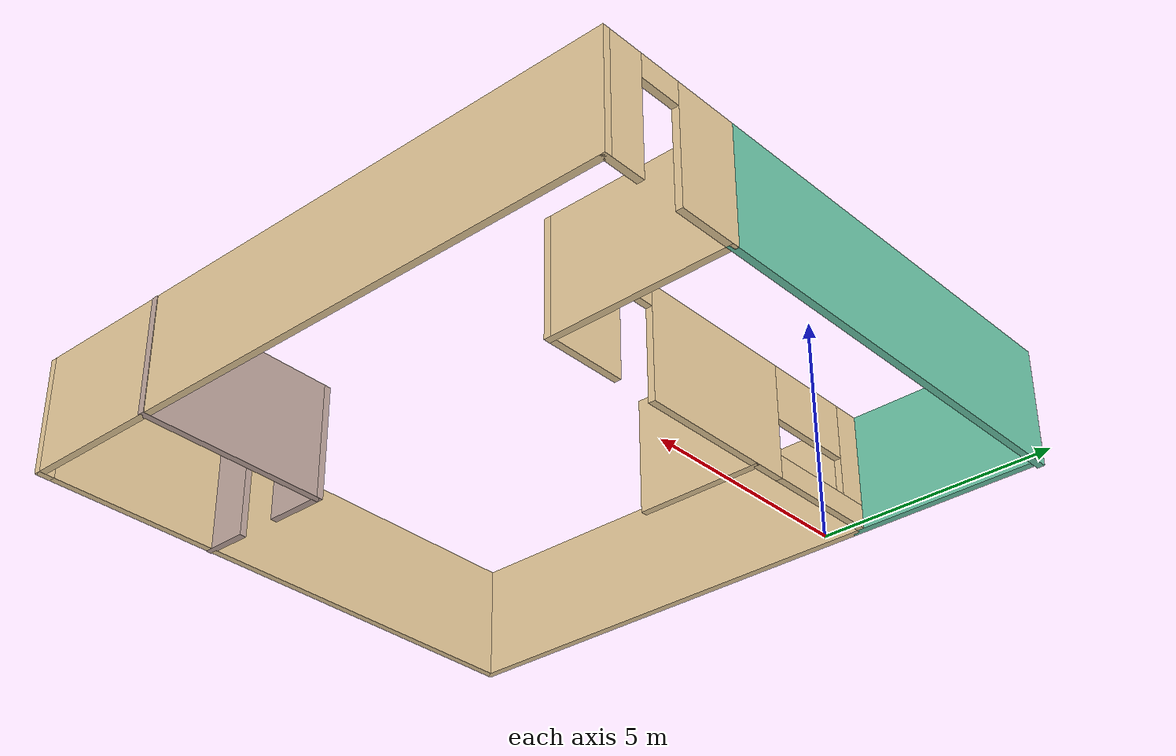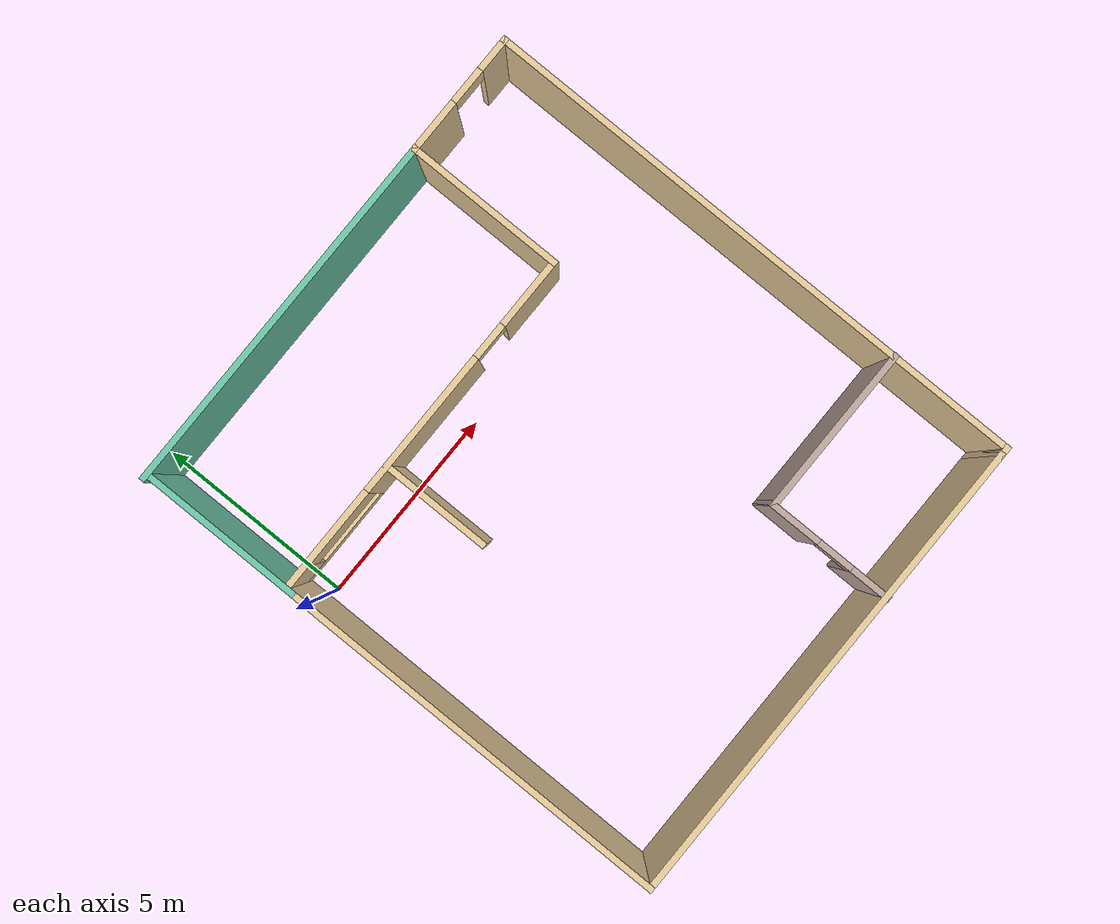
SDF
<?xml version='1.0'?>
<sdf version='1.7'>
  <model name='final_restaurant'>
    <pose>5.67789 -2.39628 0 0 -0 0</pose>
    <link name='Wall_13'>
      <pose>4.54356 6.9354 0 0 -0 3.14159</pose>
      <visual name='Wall_13_Visual_0'>
        <pose>-1.14414 0 1.25 0 -0 0</pose>
        <geometry>
          <box>
            <size>0.89781 0.15 2.5</size>
          </box>
        </geometry>
        <material>
          <script>
            <uri>file://media/materials/scripts/gazebo.material</uri>
            <name>Gazebo/Grey</name>
          </script>
          <ambient>0.921569 0.807843 0.615686 1</ambient>
        </material>
        <meta>
          <layer>0</layer>
        </meta>
      </visual>
      <collision name='Wall_13_Collision_0'>
        <geometry>
          <box>
            <size>0.89781 0.15 2.5</size>
          </box>
        </geometry>
        <pose>-1.14414 0 1.25 0 -0 0</pose>
      </collision>
      <visual name='Wall_13_Visual_1'>
        <pose>0.898905 0 1.25 0 -0 0</pose>
        <geometry>
          <box>
            <size>1.38828 0.15 2.5</size>
          </box>
        </geometry>
        <material>
          <script>
            <uri>file://media/materials/scripts/gazebo.material</uri>
            <name>Gazebo/Grey</name>
          </script>
          <ambient>0.921569 0.807843 0.615686 1</ambient>
        </material>
        <meta>
          <layer>0</layer>
        </meta>
      </visual>
      <collision name='Wall_13_Collision_1'>
        <geometry>
          <box>
            <size>1.38828 0.15 2.5</size>
          </box>
        </geometry>
        <pose>0.898905 0 1.25 0 -0 0</pose>
      </collision>
      <visual name='Wall_13_Visual_2'>
        <pose>-0.245237 0 2.25 0 -0 0</pose>
        <geometry>
          <box>
            <size>0.9 0.15 0.5</size>
          </box>
        </geometry>
        <material>
          <script>
            <uri>file://media/materials/scripts/gazebo.material</uri>
            <name>Gazebo/Grey</name>
          </script>
          <ambient>0.921569 0.807843 0.615686 1</ambient>
        </material>
        <meta>
          <layer>0</layer>
        </meta>
      </visual>
      <collision name='Wall_13_Collision_2'>
        <geometry>
          <box>
            <size>0.9 0.15 0.5</size>
          </box>
        </geometry>
        <pose>-0.245237 0 2.25 0 -0 0</pose>
      </collision>
    </link>
    <link name='Wall_15'>
      <collision name='Wall_15_Collision'>
        <geometry>
          <box>
            <size>4 0.15 2.5</size>
          </box>
        </geometry>
        <pose>0 0 1.25 0 -0 0</pose>
      </collision>
      <visual name='Wall_15_Visual'>
        <pose>0 0 1.25 0 -0 0</pose>
        <geometry>
          <box>
            <size>4 0.15 2.5</size>
          </box>
        </geometry>
        <material>
          <script>
            <uri>file://media/materials/scripts/gazebo.material</uri>
            <name>Gazebo/Grey</name>
          </script>
          <ambient>0.921569 0.807843 0.615686 1</ambient>
        </material>
        <meta>
          <layer>0</layer>
        </meta>
      </visual>
      <pose>3.02551 5.0104 0 0 -0 -1.5708</pose>
    </link>
    <link name='Wall_19'>
      <collision name='Wall_19_Collision'>
        <geometry>
          <box>
            <size>9.25 0.15 2.5</size>
          </box>
        </geometry>
        <pose>0 0 1.25 0 -0 0</pose>
      </collision>
      <visual name='Wall_19_Visual'>
        <pose>0 0 1.25 0 -0 0</pose>
        <geometry>
          <box>
            <size>9.25 0.15 2.5</size>
          </box>
        </geometry>
        <material>
          <script>
            <uri>file://media/materials/scripts/gazebo.material</uri>
            <name>Gazebo/Grey</name>
          </script>
          <ambient>0.435294 0.796078 0.67451 1</ambient>
        </material>
        <meta>
          <layer>0</layer>
        </meta>
      </visual>
      <pose>-1.52449 6.9354 0 0 -0 3.14159</pose>
    </link>
    <link name='Wall_21'>
      <pose>-1.39949 3.0854 0 0 -0 3.14159</pose>
      <visual name='Wall_21_Visual_0'>
        <pose>-3.59913 0 1.25 0 -0 0</pose>
        <geometry>
          <box>
            <size>1.80174 0.15 2.5</size>
          </box>
        </geometry>
        <material>
          <script>
            <uri>file://media/materials/scripts/gazebo.material</uri>
            <name>Gazebo/Grey</name>
          </script>
          <ambient>0.921569 0.807843 0.615686 1</ambient>
        </material>
        <meta>
          <layer>0</layer>
        </meta>
      </visual>
      <collision name='Wall_21_Collision_0'>
        <geometry>
          <box>
            <size>1.80174 0.15 2.5</size>
          </box>
        </geometry>
        <pose>-3.59913 0 1.25 0 -0 0</pose>
      </collision>
      <visual name='Wall_21_Visual_1'>
        <pose>0.044786 0 1.25 0 -0 0</pose>
        <geometry>
          <box>
            <size>3.6861 0.15 2.5</size>
          </box>
        </geometry>
        <material>
          <script>
            <uri>file://media/materials/scripts/gazebo.material</uri>
            <name>Gazebo/Grey</name>
          </script>
          <ambient>0.921569 0.807843 0.615686 1</ambient>
        </material>
        <meta>
          <layer>0</layer>
        </meta>
      </visual>
      <collision name='Wall_21_Collision_1'>
        <geometry>
          <box>
            <size>3.6861 0.15 2.5</size>
          </box>
        </geometry>
        <pose>0.044786 0 1.25 0 -0 0</pose>
      </collision>
      <visual name='Wall_21_Visual_2'>
        <pose>3.19392 0 0.25 0 -0 0</pose>
        <geometry>
          <box>
            <size>2.61216 0.15 0.5</size>
          </box>
        </geometry>
        <material>
          <script>
            <uri>file://media/materials/scripts/gazebo.material</uri>
            <name>Gazebo/Grey</name>
          </script>
          <ambient>0.921569 0.807843 0.615686 1</ambient>
        </material>
        <meta>
          <layer>0</layer>
        </meta>
      </visual>
      <collision name='Wall_21_Collision_2'>
        <geometry>
          <box>
            <size>2.61216 0.15 0.5</size>
          </box>
        </geometry>
        <pose>3.19392 0 0.25 0 -0 0</pose>
      </collision>
      <visual name='Wall_21_Visual_3'>
        <pose>4.19392 0 1.5 0 -0 0</pose>
        <geometry>
          <box>
            <size>0.612164 0.15 2</size>
          </box>
        </geometry>
        <material>
          <script>
            <uri>file://media/materials/scripts/gazebo.material</uri>
            <name>Gazebo/Grey</name>
          </script>
          <ambient>0.921569 0.807843 0.615686 1</ambient>
        </material>
        <meta>
          <layer>0</layer>
        </meta>
      </visual>
      <collision name='Wall_21_Collision_3'>
        <geometry>
          <box>
            <size>0.612164 0.15 2</size>
          </box>
        </geometry>
        <pose>4.19392 0 1.5 0 -0 0</pose>
      </collision>
      <visual name='Wall_21_Visual_4'>
        <pose>2.88784 0 1.9 0 -0 0</pose>
        <geometry>
          <box>
            <size>2 0.15 1.2</size>
          </box>
        </geometry>
        <material>
          <script>
            <uri>file://media/materials/scripts/gazebo.material</uri>
            <name>Gazebo/Grey</name>
          </script>
          <ambient>0.921569 0.807843 0.615686 1</ambient>
        </material>
        <meta>
          <layer>0</layer>
        </meta>
      </visual>
      <collision name='Wall_21_Collision_4'>
        <geometry>
          <box>
            <size>2 0.15 1.2</size>
          </box>
        </geometry>
        <pose>2.88784 0 1.9 0 -0 0</pose>
      </collision>
      <visual name='Wall_21_Visual_5'>
        <pose>-2.24826 0 2.25 0 -0 0</pose>
        <geometry>
          <box>
            <size>0.9 0.15 0.5</size>
          </box>
        </geometry>
        <material>
          <script>
            <uri>file://media/materials/scripts/gazebo.material</uri>
            <name>Gazebo/Grey</name>
          </script>
          <ambient>0.921569 0.807843 0.615686 1</ambient>
        </material>
        <meta>
          <layer>0</layer>
        </meta>
      </visual>
      <collision name='Wall_21_Collision_5'>
        <geometry>
          <box>
            <size>0.9 0.15 0.5</size>
          </box>
        </geometry>
        <pose>-2.24826 0 2.25 0 -0 0</pose>
      </collision>
    </link>
    <link name='Wall_37'>
      <collision name='Wall_37_Collision'>
        <geometry>
          <box>
            <size>10 0.15 2.5</size>
          </box>
        </geometry>
        <pose>0 0 1.25 0 -0 0</pose>
      </collision>
      <visual name='Wall_37_Visual'>
        <pose>0 0 1.25 0 -0 0</pose>
        <geometry>
          <box>
            <size>10 0.15 2.5</size>
          </box>
        </geometry>
        <material>
          <script>
            <uri>file://media/materials/scripts/gazebo.material</uri>
            <name>Gazebo/Grey</name>
          </script>
          <ambient>0.921569 0.807843 0.615686 1</ambient>
        </material>
        <meta>
          <layer>0</layer>
        </meta>
      </visual>
      <pose>-5.97449 -1.9896 0 0 -0 -1.5708</pose>
    </link>
    <link name='Wall_39'>
      <collision name='Wall_39_Collision'>
        <geometry>
          <box>
            <size>12 0.15 2.5</size>
          </box>
        </geometry>
        <pose>0 0 1.25 0 -0 0</pose>
      </collision>
      <visual name='Wall_39_Visual'>
        <pose>0 0 1.25 0 -0 0</pose>
        <geometry>
          <box>
            <size>12 0.15 2.5</size>
          </box>
        </geometry>
        <material>
          <script>
            <uri>file://media/materials/scripts/gazebo.material</uri>
            <name>Gazebo/Grey</name>
          </script>
          <ambient>0.921569 0.807843 0.615686 1</ambient>
        </material>
        <meta>
          <layer>0</layer>
        </meta>
      </visual>
      <pose>-0.049492 -6.9146 0 0 -0 0</pose>
    </link>
    <link name='Wall_42'>
      <collision name='Wall_42_Collision'>
        <geometry>
          <box>
            <size>14 0.15 2.5</size>
          </box>
        </geometry>
        <pose>0 0 1.25 0 -0 0</pose>
      </collision>
      <visual name='Wall_42_Visual'>
        <pose>0 0 1.25 0 -0 0</pose>
        <geometry>
          <box>
            <size>14 0.15 2.5</size>
          </box>
        </geometry>
        <material>
          <script>
            <uri>file://media/materials/scripts/gazebo.material</uri>
            <name>Gazebo/Grey</name>
          </script>
          <ambient>0.921569 0.807843 0.615686 1</ambient>
        </material>
        <meta>
          <layer>0</layer>
        </meta>
      </visual>
      <pose>6.0616 0.010404 0 0 -0 -1.5708</pose>
    </link>
    <link name='Wall_43'>
      <collision name='Wall_43_Collision'>
        <geometry>
          <box>
            <size>0.336096 0.15 2.5</size>
          </box>
        </geometry>
        <pose>0 0 1.25 0 -0 0</pose>
      </collision>
      <visual name='Wall_43_Visual'>
        <pose>0 0 1.25 0 -0 0</pose>
        <geometry>
          <box>
            <size>0.336096 0.15 2.5</size>
          </box>
        </geometry>
        <material>
          <script>
            <uri>file://media/materials/scripts/gazebo.material</uri>
            <name>Gazebo/Grey</name>
          </script>
          <ambient>0.921569 0.807843 0.615686 1</ambient>
        </material>
        <meta>
          <layer>0</layer>
        </meta>
      </visual>
      <pose>5.96856 -6.9146 0 0 -0 3.14159</pose>
    </link>
    <link name='Wall_45'>
      <collision name='Wall_45_Collision'>
        <geometry>
          <box>
            <size>2.75 0.15 2.5</size>
          </box>
        </geometry>
        <pose>0 0 1.25 0 -0 0</pose>
      </collision>
      <visual name='Wall_45_Visual'>
        <pose>0 0 1.25 0 -0 0</pose>
        <geometry>
          <box>
            <size>2.75 0.15 2.5</size>
          </box>
        </geometry>
        <material>
          <script>
            <uri>file://media/materials/scripts/gazebo.material</uri>
            <name>Gazebo/Grey</name>
          </script>
          <ambient>0.921569 0.807843 0.615686 1</ambient>
        </material>
        <meta>
          <layer>0</layer>
        </meta>
      </visual>
      <pose>-2.59875 1.75536 0 0 -0 -1.5708</pose>
    </link>
    <link name='Wall_48'>
      <pose>1.97449 -5.3854 0 0 -0 1.5708</pose>
      <visual name='Wall_48_Visual_0'>
        <pose>-1.10892 0 1.25 0 -0 0</pose>
        <geometry>
          <box>
            <size>1.03215 0.15 2.5</size>
          </box>
        </geometry>
        <material>
          <script>
            <uri>file://media/materials/scripts/gazebo.material</uri>
            <name>Gazebo/Grey</name>
          </script>
          <ambient>0.760784 0.662745 0.627451 1</ambient>
        </material>
        <meta>
          <layer>0</layer>
        </meta>
      </visual>
      <collision name='Wall_48_Collision_0'>
        <geometry>
          <box>
            <size>1.03215 0.15 2.5</size>
          </box>
        </geometry>
        <pose>-1.10892 0 1.25 0 -0 0</pose>
      </collision>
      <visual name='Wall_48_Visual_1'>
        <pose>0.966075 0 1.25 0 -0 0</pose>
        <geometry>
          <box>
            <size>1.31785 0.15 2.5</size>
          </box>
        </geometry>
        <material>
          <script>
            <uri>file://media/materials/scripts/gazebo.material</uri>
            <name>Gazebo/Grey</name>
          </script>
          <ambient>0.760784 0.662745 0.627451 1</ambient>
        </material>
        <meta>
          <layer>0</layer>
        </meta>
      </visual>
      <collision name='Wall_48_Collision_1'>
        <geometry>
          <box>
            <size>1.31785 0.15 2.5</size>
          </box>
        </geometry>
        <pose>0.966075 0 1.25 0 -0 0</pose>
      </collision>
      <visual name='Wall_48_Visual_2'>
        <pose>-0.142849 0 2.25 0 -0 0</pose>
        <geometry>
          <box>
            <size>0.9 0.15 0.5</size>
          </box>
        </geometry>
        <material>
          <script>
            <uri>file://media/materials/scripts/gazebo.material</uri>
            <name>Gazebo/Grey</name>
          </script>
          <ambient>0.760784 0.662745 0.627451 1</ambient>
        </material>
        <meta>
          <layer>0</layer>
        </meta>
      </visual>
      <collision name='Wall_48_Collision_2'>
        <geometry>
          <box>
            <size>0.9 0.15 0.5</size>
          </box>
        </geometry>
        <pose>-0.142849 0 2.25 0 -0 0</pose>
      </collision>
    </link>
    <link name='Wall_49'>
      <collision name='Wall_49_Collision'>
        <geometry>
          <box>
            <size>4.25 0.15 2.5</size>
          </box>
        </geometry>
        <pose>0 0 1.25 0 -0 0</pose>
      </collision>
      <visual name='Wall_49_Visual'>
        <pose>0 0 1.25 0 -0 0</pose>
        <geometry>
          <box>
            <size>4.25 0.15 2.5</size>
          </box>
        </geometry>
        <material>
          <script>
            <uri>file://media/materials/scripts/gazebo.material</uri>
            <name>Gazebo/Grey</name>
          </script>
          <ambient>0.760784 0.662745 0.627451 1</ambient>
        </material>
        <meta>
          <layer>0</layer>
        </meta>
      </visual>
      <pose>4.02449 -3.8354 0 0 -0 0</pose>
    </link>
    <link name='Wall_6'>
      <collision name='Wall_6_Collision'>
        <geometry>
          <box>
            <size>4 0.15 2.5</size>
          </box>
        </geometry>
        <pose>0 0 1.25 0 -0 0</pose>
      </collision>
      <visual name='Wall_6_Visual'>
        <pose>0 0 1.25 0 -0 0</pose>
        <geometry>
          <box>
            <size>4 0.15 2.5</size>
          </box>
        </geometry>
        <material>
          <script>
            <uri>file://media/materials/scripts/gazebo.material</uri>
            <name>Gazebo/Grey</name>
          </script>
          <ambient>0.435294 0.796078 0.67451 1</ambient>
        </material>
        <meta>
          <layer>0</layer>
        </meta>
      </visual>
      <pose>-5.97449 4.8604 0 0 -0 1.5708</pose>
    </link>
    <static>1</static>
  </model>
</sdf>
